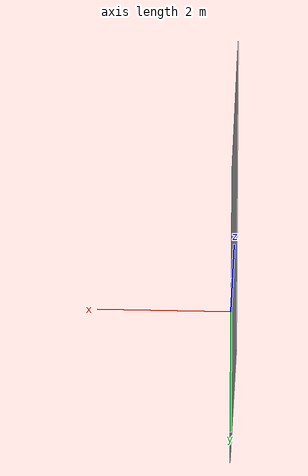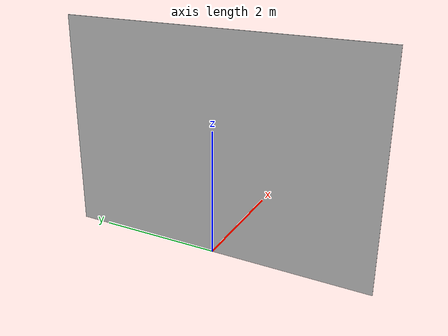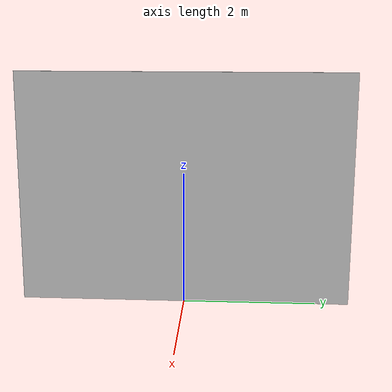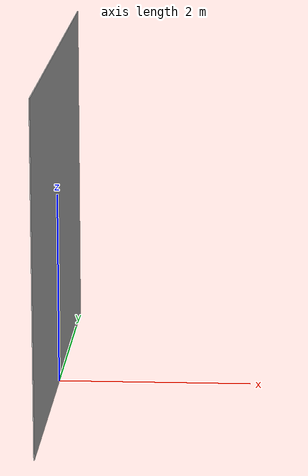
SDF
<?xml version="1.0" ?><sdf version="1.6">
  <model name="imagen_cuadricula">
    <static>true</static>
    <link name="link">
      <visual name="visual">
        <geometry>
          <mesh>
            <uri>model://imagen_cuadricula/meshes/imagen_cuadricula.dae</uri>
            <scale>1.0 10.0 7.0</scale>
          </mesh>
        </geometry>
      </visual>
    </link>
  </model>
</sdf>
